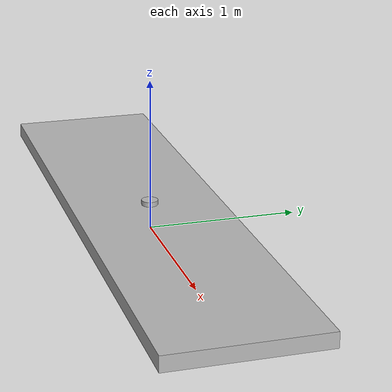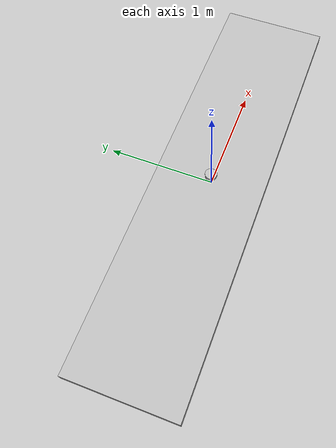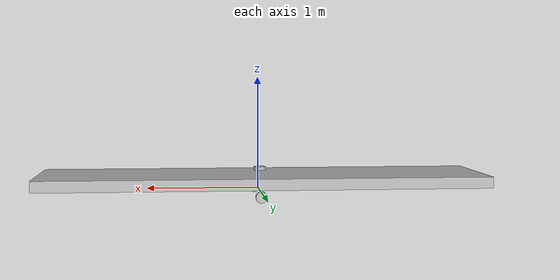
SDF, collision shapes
<sdf version='1.7'>
  <model name='turtlebot3_burger'>
    <link name='base_footprint'>
      <inertial>
        <pose>-0.000401 0 0.011936 0 -0 0</pose>
        <mass>10.119</mass>
        <inertia>
          <ixx>0.105335</ixx>
          <ixy>0</ixy>
          <ixz>0.00061799</ixz>
          <iyy>0.105483</iyy>
          <iyz>1.05879e-22</iyz>
          <izz>0.102148</izz>
        </inertia>
      </inertial>
      <collision name='base_footprint_fixed_joint_lump__base_link_collision'>
        <pose>-0.032 0 0.08 0 -0 0</pose>
        <geometry>
          <box>
            <size>4 1 0.1</size>
          </box>
        </geometry>
      </collision>
      <collision name='base_footprint_fixed_joint_lump__caster_back_link_collision_1'>
        <pose>-0.081 1e-06 0.005 -1.57 0 0</pose>
        <geometry>
          <box>
            <size>0.03 0.009 0.02</size>
          </box>
        </geometry>
      </collision>
      <collision name='base_footprint_fixed_joint_lump__base_scan_collision_2'>
        <pose>-0.017 0 0.1755 0 -0 0</pose>
        <geometry>
          <cylinder>
            <length>0.0315</length>
            <radius>0.055</radius>
          </cylinder>
        </geometry>
      </collision>
      <visual name='base_footprint_fixed_joint_lump__base_link_visual'>
        <pose>0 0 0.01 0 -0 0</pose>
        <geometry>
          <mesh>
            <scale>0.001 0.001 0.001</scale>
            <uri>model://turtlebot3_gazebo/models/turtlebot3_common/meshes/burger_base.dae</uri>
          </mesh>
        </geometry>
      </visual>
      <visual name='base_footprint_fixed_joint_lump__base_scan_visual_1'>
        <pose>-0.032 0 0.182 0 -0 0</pose>
        <geometry>
          <mesh>
            <scale>0.001 0.001 0.001</scale>
            <uri>model://turtlebot3_gazebo/models/turtlebot3_common/meshes/lds.dae</uri>
          </mesh>
        </geometry>
      </visual>
    </link>
    <joint name='wheel_left_joint' type='revolute'>
      <pose relative_to='base_footprint'>0 0.4 -0.04 1.5708 -0 3.14159</pose>
      <parent>base_footprint</parent>
      <child>wheel_left_link</child>
      <axis>
        <xyz>0 0 1</xyz>
        <limit>
          <lower>-1e+16</lower>
          <upper>1e+16</upper>
        </limit>
        <dynamics>
          <spring_reference>0</spring_reference>
          <spring_stiffness>0</spring_stiffness>
        </dynamics>
      </axis>
    </joint>
    <link name='wheel_left_link'>
      <pose relative_to='wheel_left_joint'>0 0 0 0 -0 0</pose>
      <inertial>
        <pose>0 0 0 0 -0 0</pose>
        <mass>1</mass>
        <inertia>
          <ixx>0.01</ixx>
          <ixy>0</ixy>
          <ixz>0</ixz>
          <iyy>0.01</iyy>
          <iyz>0</iyz>
          <izz>0.01</izz>
        </inertia>
      </inertial>
      <collision name='wheel_left_link_collision'>
        <pose>0 0 0 0 -0 0</pose>
        <geometry>
          <cylinder>
            <length>0.05</length>
            <radius>0.05</radius>
          </cylinder>
        </geometry>
      </collision>
      <visual name='wheel_left_link_visual'>
        <pose>0 0 0 1.57 -0 0</pose>
        <geometry>
          <cylinder>
            <length>0.05</length>
            <radius>0.05</radius>
          </cylinder>
        </geometry>
      </visual>
    </link>
    <joint name='wheel_right_joint' type='revolute'>
      <pose relative_to='base_footprint'>0 -0.4 -0.04 1.5708 -0 3.14159</pose>
      <parent>base_footprint</parent>
      <child>wheel_right_link</child>
      <axis>
        <xyz>0 0 1</xyz>
        <limit>
          <lower>-1e+16</lower>
          <upper>1e+16</upper>
        </limit>
        <dynamics>
          <spring_reference>0</spring_reference>
          <spring_stiffness>0</spring_stiffness>
        </dynamics>
      </axis>
    </joint>
    <link name='wheel_right_link'>
      <pose relative_to='wheel_right_joint'>0 0 0 0 -0 0</pose>
      <inertial>
        <pose>0 0 0 0 -0 0</pose>
        <mass>1</mass>
        <inertia>
          <ixx>0.01</ixx>
          <ixy>0</ixy>
          <ixz>0</ixz>
          <iyy>0.01</iyy>
          <iyz>0</iyz>
          <izz>0.01</izz>
        </inertia>
      </inertial>
      <collision name='wheel_right_link_collision'>
        <pose>0 0 0 0 -0 0</pose>
        <geometry>
          <cylinder>
            <length>0.05</length>
            <radius>0.05</radius>
          </cylinder>
        </geometry>
      </collision>
      <visual name='wheel_right_link_visual'>
        <pose>0 0 0 1.57 -0 0</pose>
        <geometry>
          <cylinder>
            <length>0.05</length>
            <radius>0.05</radius>
          </cylinder>
        </geometry>
      </visual>
    </link>
  </model>
</sdf>
